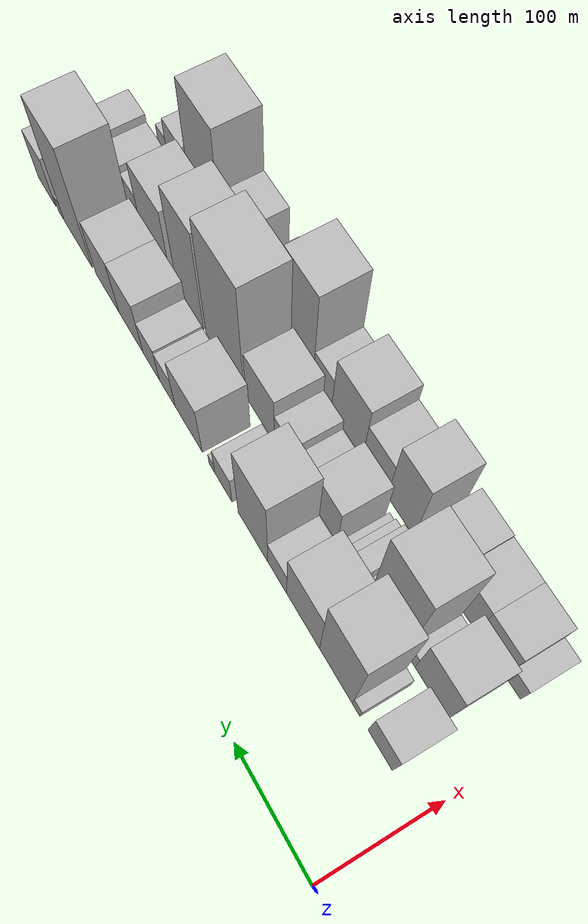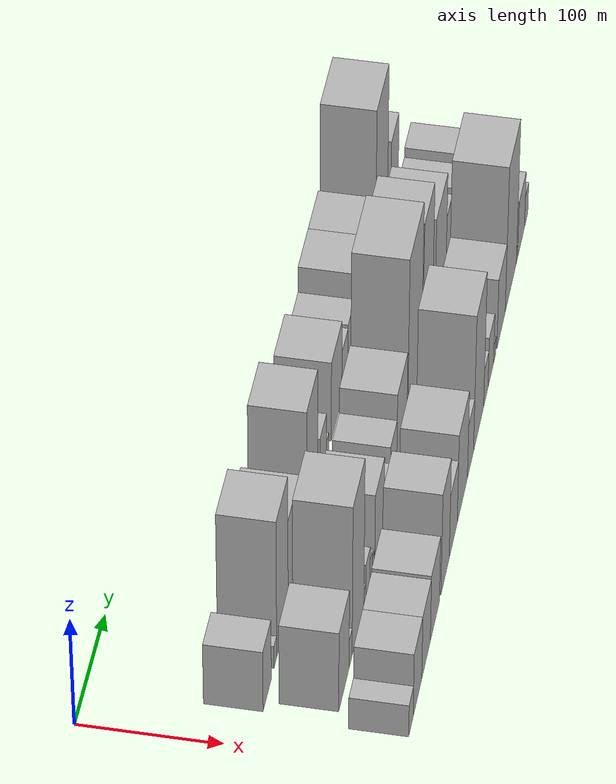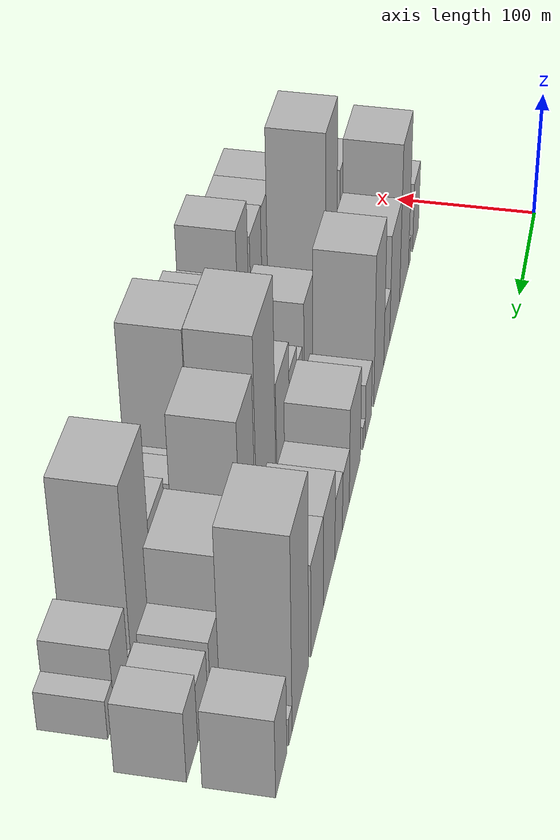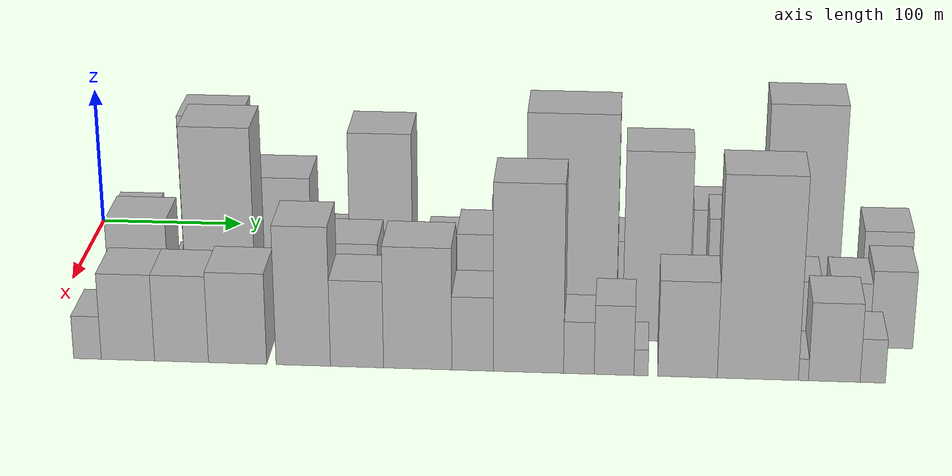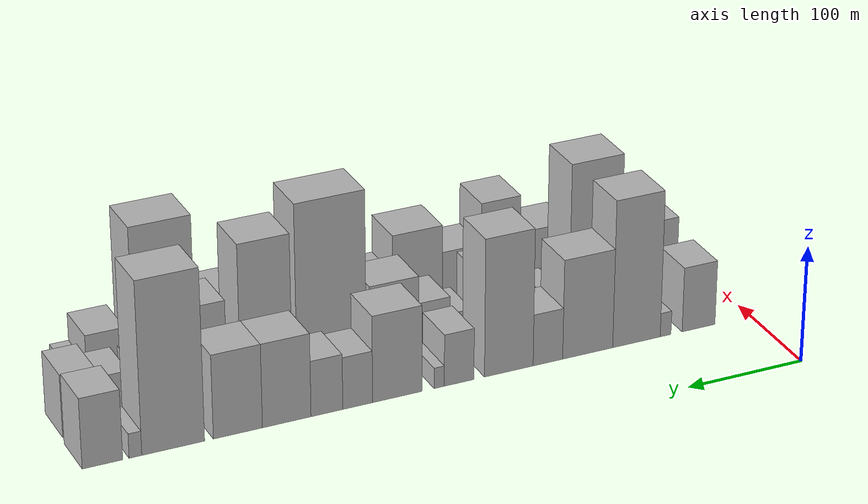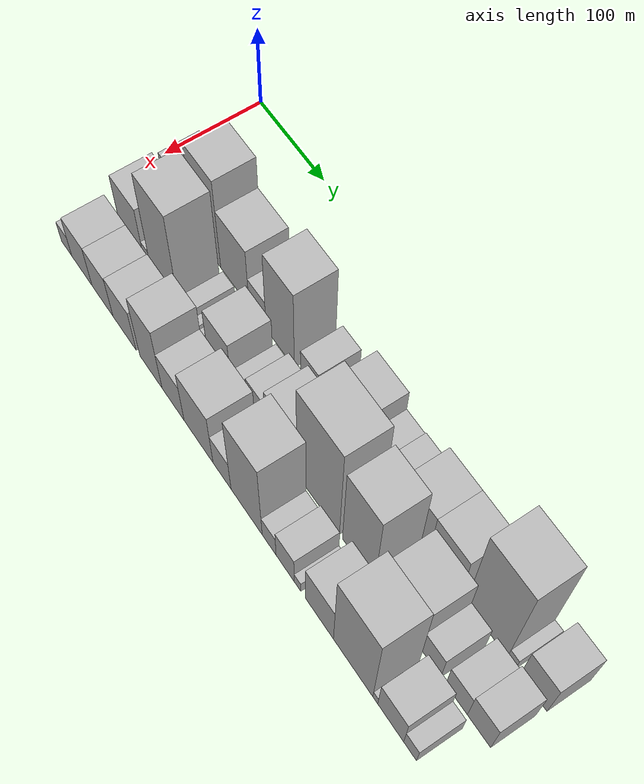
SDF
<sdf version="1.6">
 <world name="default">
  <model name="building_18">
   <static>1</static>
   <pose>100.0000 47.5142 0 0.000000 0.000000 0.000000</pose>
   <link name="link">
    <pose>0 0 28.50 0 0 0</pose>
    <collision name="collision"><geometry><box><size>40.0000 29.5781 57.0000</size></box></geometry></collision>
    <visual name="visual">
     <cast_shadows>0</cast_shadows>
     <geometry><box><size>40.0000 29.5781 57.0000</size></box></geometry>
     <material>
      <script>
       <uri>model://HANNAS_wall/materials/scripts</uri>
       <uri>model://HANNAS_wall/materials/textures</uri>
       <name>vrc/HANNAS_wall</name>
      </script>
     </material>
    </visual>
   </link>
  </model>
  <model name="building_19">
   <static>1</static>
   <pose>100.0000 77.1149 0 0.000000 0.000000 0.000000</pose>
   <link name="link">
    <pose>0 0 10.50 0 0 0</pose>
    <collision name="collision"><geometry><box><size>40.0000 9.6232 21.0000</size></box></geometry></collision>
    <visual name="visual">
     <cast_shadows>0</cast_shadows>
     <geometry><box><size>40.0000 9.6232 21.0000</size></box></geometry>
     <material>
      <script>
       <uri>model://HANNAS_wall/materials/scripts</uri>
       <uri>model://HANNAS_wall/materials/textures</uri>
       <name>vrc/HANNAS_wall</name>
      </script>
     </material>
    </visual>
   </link>
  </model>
  <model name="building_20">
   <static>1</static>
   <pose>100.0000 103.0087 0 0.000000 0.000000 0.000000</pose>
   <link name="link">
    <pose>0 0 64.50 0 0 0</pose>
    <collision name="collision"><geometry><box><size>40.0000 42.1644 129.0000</size></box></geometry></collision>
    <visual name="visual">
     <cast_shadows>0</cast_shadows>
     <geometry><box><size>40.0000 42.1644 129.0000</size></box></geometry>
     <material>
      <script>
       <uri>model://HANNAS_wall/materials/scripts</uri>
       <uri>model://HANNAS_wall/materials/textures</uri>
       <name>vrc/HANNAS_wall</name>
      </script>
     </material>
    </visual>
   </link>
  </model>
  <model name="building_21">
   <static>1</static>
   <pose>100.0000 146.0531 0 0.000000 0.000000 0.000000</pose>
   <link name="link">
    <pose>0 0 43.50 0 0 0</pose>
    <collision name="collision"><geometry><box><size>40.0000 43.9245 87.0000</size></box></geometry></collision>
    <visual name="visual">
     <cast_shadows>0</cast_shadows>
     <geometry><box><size>40.0000 43.9245 87.0000</size></box></geometry>
     <material>
      <script>
       <uri>model://HANNAS_wall/materials/scripts</uri>
       <uri>model://HANNAS_wall/materials/textures</uri>
       <name>vrc/HANNAS_wall</name>
      </script>
     </material>
    </visual>
   </link>
  </model>
  <model name="building_22">
   <static>1</static>
   <pose>100.0000 180.8599 0 0.000000 0.000000 0.000000</pose>
   <link name="link">
    <pose>0 0 22.50 0 0 0</pose>
    <collision name="collision"><geometry><box><size>40.0000 25.6891 45.0000</size></box></geometry></collision>
    <visual name="visual">
     <cast_shadows>0</cast_shadows>
     <geometry><box><size>40.0000 25.6891 45.0000</size></box></geometry>
     <material>
      <script>
       <uri>model://HANNAS_wall/materials/scripts</uri>
       <uri>model://HANNAS_wall/materials/textures</uri>
       <name>vrc/HANNAS_wall</name>
      </script>
     </material>
    </visual>
   </link>
  </model>
  <model name="building_23">
   <static>1</static>
   <pose>100.0000 214.6392 0 0.000000 0.000000 0.000000</pose>
   <link name="link">
    <pose>0 0 60.00 0 0 0</pose>
    <collision name="collision"><geometry><box><size>40.0000 41.8695 120.0000</size></box></geometry></collision>
    <visual name="visual">
     <cast_shadows>0</cast_shadows>
     <geometry><box><size>40.0000 41.8695 120.0000</size></box></geometry>
     <material>
      <script>
       <uri>model://HANNAS_wall/materials/scripts</uri>
       <uri>model://HANNAS_wall/materials/textures</uri>
       <name>vrc/HANNAS_wall</name>
      </script>
     </material>
    </visual>
   </link>
  </model>
  <model name="building_24">
   <static>1</static>
   <pose>100.0000 257.1853 0 0.000000 0.000000 0.000000</pose>
   <link name="link">
    <pose>0 0 22.50 0 0 0</pose>
    <collision name="collision"><geometry><box><size>40.0000 25.2226 45.0000</size></box></geometry></collision>
    <visual name="visual">
     <cast_shadows>0</cast_shadows>
     <geometry><box><size>40.0000 25.2226 45.0000</size></box></geometry>
     <material>
      <script>
       <uri>model://HANNAS_wall/materials/scripts</uri>
       <uri>model://HANNAS_wall/materials/textures</uri>
       <name>vrc/HANNAS_wall</name>
      </script>
     </material>
    </visual>
   </link>
  </model>
  <model name="building_25">
   <static>1</static>
   <pose>100.0000 274.1610 0 0.000000 0.000000 0.000000</pose>
   <link name="link">
    <pose>0 0 9.00 0 0 0</pose>
    <collision name="collision"><geometry><box><size>40.0000 8.7289 18.0000</size></box></geometry></collision>
    <visual name="visual">
     <cast_shadows>0</cast_shadows>
     <geometry><box><size>40.0000 8.7289 18.0000</size></box></geometry>
     <material>
      <script>
       <uri>model://HANNAS_wall/materials/scripts</uri>
       <uri>model://HANNAS_wall/materials/textures</uri>
       <name>vrc/HANNAS_wall</name>
      </script>
     </material>
    </visual>
   </link>
  </model>
  <model name="building_26">
   <static>1</static>
   <pose>100.0000 309.3299 0 0.000000 0.000000 0.000000</pose>
   <link name="link">
    <pose>0 0 37.50 0 0 0</pose>
    <collision name="collision"><geometry><box><size>40.0000 41.6088 75.0000</size></box></geometry></collision>
    <visual name="visual">
     <cast_shadows>0</cast_shadows>
     <geometry><box><size>40.0000 41.6088 75.0000</size></box></geometry>
     <material>
      <script>
       <uri>model://HANNAS_wall/materials/scripts</uri>
       <uri>model://HANNAS_wall/materials/textures</uri>
       <name>vrc/HANNAS_wall</name>
      </script>
     </material>
    </visual>
   </link>
  </model>
  <model name="building_27">
   <static>1</static>
   <pose>100.0000 342.5197 0 0.000000 0.000000 0.000000</pose>
   <link name="link">
    <pose>0 0 22.50 0 0 0</pose>
    <collision name="collision"><geometry><box><size>40.0000 24.7709 45.0000</size></box></geometry></collision>
    <visual name="visual">
     <cast_shadows>0</cast_shadows>
     <geometry><box><size>40.0000 24.7709 45.0000</size></box></geometry>
     <material>
      <script>
       <uri>model://HANNAS_wall/materials/scripts</uri>
       <uri>model://HANNAS_wall/materials/textures</uri>
       <name>vrc/HANNAS_wall</name>
      </script>
     </material>
    </visual>
   </link>
  </model>
  <model name="building_28">
   <static>1</static>
   <pose>100.0000 368.0168 0 0.000000 0.000000 0.000000</pose>
   <link name="link">
    <pose>0 0 24.00 0 0 0</pose>
    <collision name="collision"><geometry><box><size>40.0000 26.2232 48.0000</size></box></geometry></collision>
    <visual name="visual">
     <cast_shadows>0</cast_shadows>
     <geometry><box><size>40.0000 26.2232 48.0000</size></box></geometry>
     <material>
      <script>
       <uri>model://HANNAS_wall/materials/scripts</uri>
       <uri>model://HANNAS_wall/materials/textures</uri>
       <name>vrc/HANNAS_wall</name>
      </script>
     </material>
    </visual>
   </link>
  </model>
  <model name="building_29">
   <static>1</static>
   <pose>100.0000 400.9794 0 0.000000 0.000000 0.000000</pose>
   <link name="link">
    <pose>0 0 36.00 0 0 0</pose>
    <collision name="collision"><geometry><box><size>40.0000 39.7020 72.0000</size></box></geometry></collision>
    <visual name="visual">
     <cast_shadows>0</cast_shadows>
     <geometry><box><size>40.0000 39.7020 72.0000</size></box></geometry>
     <material>
      <script>
       <uri>model://HANNAS_wall/materials/scripts</uri>
       <uri>model://HANNAS_wall/materials/textures</uri>
       <name>vrc/HANNAS_wall</name>
      </script>
     </material>
    </visual>
   </link>
  </model>
  <model name="building_30">
   <static>1</static>
   <pose>100.0000 440.6748 0 0.000000 0.000000 0.000000</pose>
   <link name="link">
    <pose>0 0 36.00 0 0 0</pose>
    <collision name="collision"><geometry><box><size>40.0000 39.6888 72.0000</size></box></geometry></collision>
    <visual name="visual">
     <cast_shadows>0</cast_shadows>
     <geometry><box><size>40.0000 39.6888 72.0000</size></box></geometry>
     <material>
      <script>
       <uri>model://HANNAS_wall/materials/scripts</uri>
       <uri>model://HANNAS_wall/materials/textures</uri>
       <name>vrc/HANNAS_wall</name>
      </script>
     </material>
    </visual>
   </link>
  </model>
  <model name="building_31">
   <static>1</static>
   <pose>100.0000 492.5339 0 0.000000 0.000000 0.000000</pose>
   <link name="link">
    <pose>0 0 73.50 0 0 0</pose>
    <collision name="collision"><geometry><box><size>40.0000 50.0295 147.0000</size></box></geometry></collision>
    <visual name="visual">
     <cast_shadows>0</cast_shadows>
     <geometry><box><size>40.0000 50.0295 147.0000</size></box></geometry>
     <material>
      <script>
       <uri>model://HANNAS_wall/materials/scripts</uri>
       <uri>model://HANNAS_wall/materials/textures</uri>
       <name>vrc/HANNAS_wall</name>
      </script>
     </material>
    </visual>
   </link>
  </model>
  <model name="building_32">
   <static>1</static>
   <pose>100.0000 522.5782 0 0.000000 0.000000 0.000000</pose>
   <link name="link">
    <pose>0 0 10.50 0 0 0</pose>
    <collision name="collision"><geometry><box><size>40.0000 10.0590 21.0000</size></box></geometry></collision>
    <visual name="visual">
     <cast_shadows>0</cast_shadows>
     <geometry><box><size>40.0000 10.0590 21.0000</size></box></geometry>
     <material>
      <script>
       <uri>model://HANNAS_wall/materials/scripts</uri>
       <uri>model://HANNAS_wall/materials/textures</uri>
       <name>vrc/HANNAS_wall</name>
      </script>
     </material>
    </visual>
   </link>
  </model>
  <model name="building_33">
   <static>1</static>
   <pose>100.0000 548.5103 0 0.000000 0.000000 0.000000</pose>
   <link name="link">
    <pose>0 0 30.00 0 0 0</pose>
    <collision name="collision"><geometry><box><size>40.0000 31.8052 60.0000</size></box></geometry></collision>
    <visual name="visual">
     <cast_shadows>0</cast_shadows>
     <geometry><box><size>40.0000 31.8052 60.0000</size></box></geometry>
     <material>
      <script>
       <uri>model://HANNAS_wall/materials/scripts</uri>
       <uri>model://HANNAS_wall/materials/textures</uri>
       <name>vrc/HANNAS_wall</name>
      </script>
     </material>
    </visual>
   </link>
  </model>
  <model name="building_50">
   <static>1</static>
   <pose>149.0000 61.2179 0 0.000000 0.000000 0.000000</pose>
   <link name="link">
    <pose>0 0 37.50 0 0 0</pose>
    <collision name="collision"><geometry><box><size>40.0000 39.3631 75.0000</size></box></geometry></collision>
    <visual name="visual">
     <cast_shadows>0</cast_shadows>
     <geometry><box><size>40.0000 39.3631 75.0000</size></box></geometry>
     <material>
      <script>
       <uri>model://HANNAS_wall/materials/scripts</uri>
       <uri>model://HANNAS_wall/materials/textures</uri>
       <name>vrc/HANNAS_wall</name>
      </script>
     </material>
    </visual>
   </link>
  </model>
  <model name="building_51">
   <static>1</static>
   <pose>149.0000 86.5905 0 0.000000 0.000000 0.000000</pose>
   <link name="link">
    <pose>0 0 13.50 0 0 0</pose>
    <collision name="collision"><geometry><box><size>40.0000 11.3823 27.0000</size></box></geometry></collision>
    <visual name="visual">
     <cast_shadows>0</cast_shadows>
     <geometry><box><size>40.0000 11.3823 27.0000</size></box></geometry>
     <material>
      <script>
       <uri>model://HANNAS_wall/materials/scripts</uri>
       <uri>model://HANNAS_wall/materials/textures</uri>
       <name>vrc/HANNAS_wall</name>
      </script>
     </material>
    </visual>
   </link>
  </model>
  <model name="building_52">
   <static>1</static>
   <pose>149.0000 115.1074 0 0.000000 0.000000 0.000000</pose>
   <link name="link">
    <pose>0 0 70.50 0 0 0</pose>
    <collision name="collision"><geometry><box><size>40.0000 45.6515 141.0000</size></box></geometry></collision>
    <visual name="visual">
     <cast_shadows>0</cast_shadows>
     <geometry><box><size>40.0000 45.6515 141.0000</size></box></geometry>
     <material>
      <script>
       <uri>model://HANNAS_wall/materials/scripts</uri>
       <uri>model://HANNAS_wall/materials/textures</uri>
       <name>vrc/HANNAS_wall</name>
      </script>
     </material>
    </visual>
   </link>
  </model>
  <model name="building_53">
   <static>1</static>
   <pose>149.0000 141.5567 0 0.000000 0.000000 0.000000</pose>
   <link name="link">
    <pose>0 0 7.50 0 0 0</pose>
    <collision name="collision"><geometry><box><size>40.0000 7.2470 15.0000</size></box></geometry></collision>
    <visual name="visual">
     <cast_shadows>0</cast_shadows>
     <geometry><box><size>40.0000 7.2470 15.0000</size></box></geometry>
     <material>
      <script>
       <uri>model://HANNAS_wall/materials/scripts</uri>
       <uri>model://HANNAS_wall/materials/textures</uri>
       <name>vrc/HANNAS_wall</name>
      </script>
     </material>
    </visual>
   </link>
  </model>
  <model name="building_54">
   <static>1</static>
   <pose>149.0000 153.6375 0 0.000000 0.000000 0.000000</pose>
   <link name="link">
    <pose>0 0 16.50 0 0 0</pose>
    <collision name="collision"><geometry><box><size>40.0000 16.9147 33.0000</size></box></geometry></collision>
    <visual name="visual">
     <cast_shadows>0</cast_shadows>
     <geometry><box><size>40.0000 16.9147 33.0000</size></box></geometry>
     <material>
      <script>
       <uri>model://HANNAS_wall/materials/scripts</uri>
       <uri>model://HANNAS_wall/materials/textures</uri>
       <name>vrc/HANNAS_wall</name>
      </script>
     </material>
    </visual>
   </link>
  </model>
  <model name="building_55">
   <static>1</static>
   <pose>149.0000 166.5069 0 0.000000 0.000000 0.000000</pose>
   <link name="link">
    <pose>0 0 10.50 0 0 0</pose>
    <collision name="collision"><geometry><box><size>40.0000 8.8241 21.0000</size></box></geometry></collision>
    <visual name="visual">
     <cast_shadows>0</cast_shadows>
     <geometry><box><size>40.0000 8.8241 21.0000</size></box></geometry>
     <material>
      <script>
       <uri>model://HANNAS_wall/materials/scripts</uri>
       <uri>model://HANNAS_wall/materials/textures</uri>
       <name>vrc/HANNAS_wall</name>
      </script>
     </material>
    </visual>
   </link>
  </model>
  <model name="building_56">
   <static>1</static>
   <pose>149.0000 174.4870 0 0.000000 0.000000 0.000000</pose>
   <link name="link">
    <pose>0 0 7.50 0 0 0</pose>
    <collision name="collision"><geometry><box><size>40.0000 7.1360 15.0000</size></box></geometry></collision>
    <visual name="visual">
     <cast_shadows>0</cast_shadows>
     <geometry><box><size>40.0000 7.1360 15.0000</size></box></geometry>
     <material>
      <script>
       <uri>model://HANNAS_wall/materials/scripts</uri>
       <uri>model://HANNAS_wall/materials/textures</uri>
       <name>vrc/HANNAS_wall</name>
      </script>
     </material>
    </visual>
   </link>
  </model>
  <model name="building_57">
   <static>1</static>
   <pose>149.0000 199.3699 0 0.000000 0.000000 0.000000</pose>
   <link name="link">
    <pose>0 0 31.50 0 0 0</pose>
    <collision name="collision"><geometry><box><size>40.0000 36.6299 63.0000</size></box></geometry></collision>
    <visual name="visual">
     <cast_shadows>0</cast_shadows>
     <geometry><box><size>40.0000 36.6299 63.0000</size></box></geometry>
     <material>
      <script>
       <uri>model://HANNAS_wall/materials/scripts</uri>
       <uri>model://HANNAS_wall/materials/textures</uri>
       <name>vrc/HANNAS_wall</name>
      </script>
     </material>
    </visual>
   </link>
  </model>
  <model name="building_58">
   <static>1</static>
   <pose>149.0000 232.9311 0 0.000000 0.000000 0.000000</pose>
   <link name="link">
    <pose>0 0 16.50 0 0 0</pose>
    <collision name="collision"><geometry><box><size>40.0000 18.4924 33.0000</size></box></geometry></collision>
    <visual name="visual">
     <cast_shadows>0</cast_shadows>
     <geometry><box><size>40.0000 18.4924 33.0000</size></box></geometry>
     <material>
      <script>
       <uri>model://HANNAS_wall/materials/scripts</uri>
       <uri>model://HANNAS_wall/materials/textures</uri>
       <name>vrc/HANNAS_wall</name>
      </script>
     </material>
    </visual>
   </link>
  </model>
  <model name="building_59">
   <static>1</static>
   <pose>149.0000 255.5444 0 0.000000 0.000000 0.000000</pose>
   <link name="link">
    <pose>0 0 24.00 0 0 0</pose>
    <collision name="collision"><geometry><box><size>40.0000 26.7342 48.0000</size></box></geometry></collision>
    <visual name="visual">
     <cast_shadows>0</cast_shadows>
     <geometry><box><size>40.0000 26.7342 48.0000</size></box></geometry>
     <material>
      <script>
       <uri>model://HANNAS_wall/materials/scripts</uri>
       <uri>model://HANNAS_wall/materials/textures</uri>
       <name>vrc/HANNAS_wall</name>
      </script>
     </material>
    </visual>
   </link>
  </model>
  <model name="building_60">
   <static>1</static>
   <pose>149.0000 289.8240 0 0.000000 0.000000 0.000000</pose>
   <link name="link">
    <pose>0 0 36.00 0 0 0</pose>
    <collision name="collision"><geometry><box><size>40.0000 41.8250 72.0000</size></box></geometry></collision>
    <visual name="visual">
     <cast_shadows>0</cast_shadows>
     <geometry><box><size>40.0000 41.8250 72.0000</size></box></geometry>
     <material>
      <script>
       <uri>model://HANNAS_wall/materials/scripts</uri>
       <uri>model://HANNAS_wall/materials/textures</uri>
       <name>vrc/HANNAS_wall</name>
      </script>
     </material>
    </visual>
   </link>
  </model>
  <model name="building_61">
   <static>1</static>
   <pose>149.0000 342.8504 0 0.000000 0.000000 0.000000</pose>
   <link name="link">
    <pose>0 0 78.00 0 0 0</pose>
    <collision name="collision"><geometry><box><size>40.0000 58.2279 156.0000</size></box></geometry></collision>
    <visual name="visual">
     <cast_shadows>0</cast_shadows>
     <geometry><box><size>40.0000 58.2279 156.0000</size></box></geometry>
     <material>
      <script>
       <uri>model://HANNAS_wall/materials/scripts</uri>
       <uri>model://HANNAS_wall/materials/textures</uri>
       <name>vrc/HANNAS_wall</name>
      </script>
     </material>
    </visual>
   </link>
  </model>
  <model name="building_62">
   <static>1</static>
   <pose>149.0000 397.2505 0 0.000000 0.000000 0.000000</pose>
   <link name="link">
    <pose>0 0 66.00 0 0 0</pose>
    <collision name="collision"><geometry><box><size>40.0000 42.5723 132.0000</size></box></geometry></collision>
    <visual name="visual">
     <cast_shadows>0</cast_shadows>
     <geometry><box><size>40.0000 42.5723 132.0000</size></box></geometry>
     <material>
      <script>
       <uri>model://HANNAS_wall/materials/scripts</uri>
       <uri>model://HANNAS_wall/materials/textures</uri>
       <name>vrc/HANNAS_wall</name>
      </script>
     </material>
    </visual>
   </link>
  </model>
  <model name="building_63">
   <static>1</static>
   <pose>149.0000 422.5136 0 0.000000 0.000000 0.000000</pose>
   <link name="link">
    <pose>0 0 9.00 0 0 0</pose>
    <collision name="collision"><geometry><box><size>40.0000 7.9540 18.0000</size></box></geometry></collision>
    <visual name="visual">
     <cast_shadows>0</cast_shadows>
     <geometry><box><size>40.0000 7.9540 18.0000</size></box></geometry>
     <material>
      <script>
       <uri>model://HANNAS_wall/materials/scripts</uri>
       <uri>model://HANNAS_wall/materials/textures</uri>
       <name>vrc/HANNAS_wall</name>
      </script>
     </material>
    </visual>
   </link>
  </model>
  <model name="building_64">
   <static>1</static>
   <pose>149.0000 453.8273 0 0.000000 0.000000 0.000000</pose>
   <link name="link">
    <pose>0 0 43.50 0 0 0</pose>
    <collision name="collision"><geometry><box><size>40.0000 48.6734 87.0000</size></box></geometry></collision>
    <visual name="visual">
     <cast_shadows>0</cast_shadows>
     <geometry><box><size>40.0000 48.6734 87.0000</size></box></geometry>
     <material>
      <script>
       <uri>model://HANNAS_wall/materials/scripts</uri>
       <uri>model://HANNAS_wall/materials/textures</uri>
       <name>vrc/HANNAS_wall</name>
      </script>
     </material>
    </visual>
   </link>
  </model>
  <model name="building_65">
   <static>1</static>
   <pose>149.0000 490.2933 0 0.000000 0.000000 0.000000</pose>
   <link name="link">
    <pose>0 0 22.50 0 0 0</pose>
    <collision name="collision"><geometry><box><size>40.0000 24.2587 45.0000</size></box></geometry></collision>
    <visual name="visual">
     <cast_shadows>0</cast_shadows>
     <geometry><box><size>40.0000 24.2587 45.0000</size></box></geometry>
     <material>
      <script>
       <uri>model://HANNAS_wall/materials/scripts</uri>
       <uri>model://HANNAS_wall/materials/textures</uri>
       <name>vrc/HANNAS_wall</name>
      </script>
     </material>
    </visual>
   </link>
  </model>
  <model name="building_66">
   <static>1</static>
   <pose>149.0000 521.5453 0 0.000000 0.000000 0.000000</pose>
   <link name="link">
    <pose>0 0 22.50 0 0 0</pose>
    <collision name="collision"><geometry><box><size>40.0000 26.2451 45.0000</size></box></geometry></collision>
    <visual name="visual">
     <cast_shadows>0</cast_shadows>
     <geometry><box><size>40.0000 26.2451 45.0000</size></box></geometry>
     <material>
      <script>
       <uri>model://HANNAS_wall/materials/scripts</uri>
       <uri>model://HANNAS_wall/materials/textures</uri>
       <name>vrc/HANNAS_wall</name>
      </script>
     </material>
    </visual>
   </link>
  </model>
  <model name="building_67">
   <static>1</static>
   <pose>149.0000 548.5156 0 0.000000 0.000000 0.000000</pose>
   <link name="link">
    <pose>0 0 27.00 0 0 0</pose>
    <collision name="collision"><geometry><box><size>40.0000 27.6955 54.0000</size></box></geometry></collision>
    <visual name="visual">
     <cast_shadows>0</cast_shadows>
     <geometry><box><size>40.0000 27.6955 54.0000</size></box></geometry>
     <material>
      <script>
       <uri>model://HANNAS_wall/materials/scripts</uri>
       <uri>model://HANNAS_wall/materials/textures</uri>
       <name>vrc/HANNAS_wall</name>
      </script>
     </material>
    </visual>
   </link>
  </model>
  <model name="building_85">
   <static>1</static>
   <pose>198.0000 36.6774 0 0.000000 0.000000 0.000000</pose>
   <link name="link">
    <pose>0 0 15.00 0 0 0</pose>
    <collision name="collision"><geometry><box><size>40.0000 17.8158 30.0000</size></box></geometry></collision>
    <visual name="visual">
     <cast_shadows>0</cast_shadows>
     <geometry><box><size>40.0000 17.8158 30.0000</size></box></geometry>
     <material>
      <script>
       <uri>model://HANNAS_wall/materials/scripts</uri>
       <uri>model://HANNAS_wall/materials/textures</uri>
       <name>vrc/HANNAS_wall</name>
      </script>
     </material>
    </visual>
   </link>
  </model>
  <model name="building_86">
   <static>1</static>
   <pose>198.0000 62.6893 0 0.000000 0.000000 0.000000</pose>
   <link name="link">
    <pose>0 0 30.00 0 0 0</pose>
    <collision name="collision"><geometry><box><size>40.0000 34.2081 60.0000</size></box></geometry></collision>
    <visual name="visual">
     <cast_shadows>0</cast_shadows>
     <geometry><box><size>40.0000 34.2081 60.0000</size></box></geometry>
     <material>
      <script>
       <uri>model://HANNAS_wall/materials/scripts</uri>
       <uri>model://HANNAS_wall/materials/textures</uri>
       <name>vrc/HANNAS_wall</name>
      </script>
     </material>
    </visual>
   </link>
  </model>
  <model name="building_87">
   <static>1</static>
   <pose>198.0000 97.0841 0 0.000000 0.000000 0.000000</pose>
   <link name="link">
    <pose>0 0 30.00 0 0 0</pose>
    <collision name="collision"><geometry><box><size>40.0000 34.5815 60.0000</size></box></geometry></collision>
    <visual name="visual">
     <cast_shadows>0</cast_shadows>
     <geometry><box><size>40.0000 34.5815 60.0000</size></box></geometry>
     <material>
      <script>
       <uri>model://HANNAS_wall/materials/scripts</uri>
       <uri>model://HANNAS_wall/materials/textures</uri>
       <name>vrc/HANNAS_wall</name>
      </script>
     </material>
    </visual>
   </link>
  </model>
  <model name="building_88">
   <static>1</static>
   <pose>198.0000 133.0027 0 0.000000 0.000000 0.000000</pose>
   <link name="link">
    <pose>0 0 31.50 0 0 0</pose>
    <collision name="collision"><geometry><box><size>40.0000 37.2557 63.0000</size></box></geometry></collision>
    <visual name="visual">
     <cast_shadows>0</cast_shadows>
     <geometry><box><size>40.0000 37.2557 63.0000</size></box></geometry>
     <material>
      <script>
       <uri>model://HANNAS_wall/materials/scripts</uri>
       <uri>model://HANNAS_wall/materials/textures</uri>
       <name>vrc/HANNAS_wall</name>
      </script>
     </material>
    </visual>
   </link>
  </model>
  <model name="building_89">
   <static>1</static>
   <pose>198.0000 174.9799 0 0.000000 0.000000 0.000000</pose>
   <link name="link">
    <pose>0 0 48.00 0 0 0</pose>
    <collision name="collision"><geometry><box><size>40.0000 34.6989 96.0000</size></box></geometry></collision>
    <visual name="visual">
     <cast_shadows>0</cast_shadows>
     <geometry><box><size>40.0000 34.6989 96.0000</size></box></geometry>
     <material>
      <script>
       <uri>model://HANNAS_wall/materials/scripts</uri>
       <uri>model://HANNAS_wall/materials/textures</uri>
       <name>vrc/HANNAS_wall</name>
      </script>
     </material>
    </visual>
   </link>
  </model>
  <model name="building_90">
   <static>1</static>
   <pose>198.0000 209.2083 0 0.000000 0.000000 0.000000</pose>
   <link name="link">
    <pose>0 0 30.00 0 0 0</pose>
    <collision name="collision"><geometry><box><size>40.0000 33.7578 60.0000</size></box></geometry></collision>
    <visual name="visual">
     <cast_shadows>0</cast_shadows>
     <geometry><box><size>40.0000 33.7578 60.0000</size></box></geometry>
     <material>
      <script>
       <uri>model://HANNAS_wall/materials/scripts</uri>
       <uri>model://HANNAS_wall/materials/textures</uri>
       <name>vrc/HANNAS_wall</name>
      </script>
     </material>
    </visual>
   </link>
  </model>
  <model name="building_91">
   <static>1</static>
   <pose>198.0000 247.6906 0 0.000000 0.000000 0.000000</pose>
   <link name="link">
    <pose>0 0 42.00 0 0 0</pose>
    <collision name="collision"><geometry><box><size>40.0000 43.2067 84.0000</size></box></geometry></collision>
    <visual name="visual">
     <cast_shadows>0</cast_shadows>
     <geometry><box><size>40.0000 43.2067 84.0000</size></box></geometry>
     <material>
      <script>
       <uri>model://HANNAS_wall/materials/scripts</uri>
       <uri>model://HANNAS_wall/materials/textures</uri>
       <name>vrc/HANNAS_wall</name>
      </script>
     </material>
    </visual>
   </link>
  </model>
  <model name="building_92">
   <static>1</static>
   <pose>198.0000 282.4220 0 0.000000 0.000000 0.000000</pose>
   <link name="link">
    <pose>0 0 25.50 0 0 0</pose>
    <collision name="collision"><geometry><box><size>40.0000 26.2561 51.0000</size></box></geometry></collision>
    <visual name="visual">
     <cast_shadows>0</cast_shadows>
     <geometry><box><size>40.0000 26.2561 51.0000</size></box></geometry>
     <material>
      <script>
       <uri>model://HANNAS_wall/materials/scripts</uri>
       <uri>model://HANNAS_wall/materials/textures</uri>
       <name>vrc/HANNAS_wall</name>
      </script>
     </material>
    </visual>
   </link>
  </model>
  <model name="building_93">
   <static>1</static>
   <pose>198.0000 317.6720 0 0.000000 0.000000 0.000000</pose>
   <link name="link">
    <pose>0 0 64.50 0 0 0</pose>
    <collision name="collision"><geometry><box><size>40.0000 44.2439 129.0000</size></box></geometry></collision>
    <visual name="visual">
     <cast_shadows>0</cast_shadows>
     <geometry><box><size>40.0000 44.2439 129.0000</size></box></geometry>
     <material>
      <script>
       <uri>model://HANNAS_wall/materials/scripts</uri>
       <uri>model://HANNAS_wall/materials/textures</uri>
       <name>vrc/HANNAS_wall</name>
      </script>
     </material>
    </visual>
   </link>
  </model>
  <model name="building_94">
   <static>1</static>
   <pose>198.0000 349.4217 0 0.000000 0.000000 0.000000</pose>
   <link name="link">
    <pose>0 0 18.00 0 0 0</pose>
    <collision name="collision"><geometry><box><size>40.0000 19.2553 36.0000</size></box></geometry></collision>
    <visual name="visual">
     <cast_shadows>0</cast_shadows>
     <geometry><box><size>40.0000 19.2553 36.0000</size></box></geometry>
     <material>
      <script>
       <uri>model://HANNAS_wall/materials/scripts</uri>
       <uri>model://HANNAS_wall/materials/textures</uri>
       <name>vrc/HANNAS_wall</name>
      </script>
     </material>
    </visual>
   </link>
  </model>
  <model name="building_95">
   <static>1</static>
   <pose>198.0000 371.5043 0 0.000000 0.000000 0.000000</pose>
   <link name="link">
    <pose>0 0 24.00 0 0 0</pose>
    <collision name="collision"><geometry><box><size>40.0000 24.9100 48.0000</size></box></geometry></collision>
    <visual name="visual">
     <cast_shadows>0</cast_shadows>
     <geometry><box><size>40.0000 24.9100 48.0000</size></box></geometry>
     <material>
      <script>
       <uri>model://HANNAS_wall/materials/scripts</uri>
       <uri>model://HANNAS_wall/materials/textures</uri>
       <name>vrc/HANNAS_wall</name>
      </script>
     </material>
    </visual>
   </link>
  </model>
  <model name="building_96">
   <static>1</static>
   <pose>198.0000 388.4126 0 0.000000 0.000000 0.000000</pose>
   <link name="link">
    <pose>0 0 9.00 0 0 0</pose>
    <collision name="collision"><geometry><box><size>40.0000 8.9066 18.0000</size></box></geometry></collision>
    <visual name="visual">
     <cast_shadows>0</cast_shadows>
     <geometry><box><size>40.0000 8.9066 18.0000</size></box></geometry>
     <material>
      <script>
       <uri>model://HANNAS_wall/materials/scripts</uri>
       <uri>model://HANNAS_wall/materials/textures</uri>
       <name>vrc/HANNAS_wall</name>
      </script>
     </material>
    </visual>
   </link>
  </model>
  <model name="building_97">
   <static>1</static>
   <pose>198.0000 417.4817 0 0.000000 0.000000 0.000000</pose>
   <link name="link">
    <pose>0 0 33.00 0 0 0</pose>
    <collision name="collision"><geometry><box><size>40.0000 37.2315 66.0000</size></box></geometry></collision>
    <visual name="visual">
     <cast_shadows>0</cast_shadows>
     <geometry><box><size>40.0000 37.2315 66.0000</size></box></geometry>
     <material>
      <script>
       <uri>model://HANNAS_wall/materials/scripts</uri>
       <uri>model://HANNAS_wall/materials/textures</uri>
       <name>vrc/HANNAS_wall</name>
      </script>
     </material>
    </visual>
   </link>
  </model>
  <model name="building_98">
   <static>1</static>
   <pose>198.0000 461.3898 0 0.000000 0.000000 0.000000</pose>
   <link name="link">
    <pose>0 0 69.00 0 0 0</pose>
    <collision name="collision"><geometry><box><size>40.0000 50.5847 138.0000</size></box></geometry></collision>
    <visual name="visual">
     <cast_shadows>0</cast_shadows>
     <geometry><box><size>40.0000 50.5847 138.0000</size></box></geometry>
     <material>
      <script>
       <uri>model://HANNAS_wall/materials/scripts</uri>
       <uri>model://HANNAS_wall/materials/textures</uri>
       <name>vrc/HANNAS_wall</name>
      </script>
     </material>
    </visual>
   </link>
  </model>
  <model name="building_99">
   <static>1</static>
   <pose>198.0000 489.7588 0 0.000000 0.000000 0.000000</pose>
   <link name="link">
    <pose>0 0 7.50 0 0 0</pose>
    <collision name="collision"><geometry><box><size>40.0000 6.1533 15.0000</size></box></geometry></collision>
    <visual name="visual">
     <cast_shadows>0</cast_shadows>
     <geometry><box><size>40.0000 6.1533 15.0000</size></box></geometry>
     <material>
      <script>
       <uri>model://HANNAS_wall/materials/scripts</uri>
       <uri>model://HANNAS_wall/materials/textures</uri>
       <name>vrc/HANNAS_wall</name>
      </script>
     </material>
    </visual>
   </link>
  </model>
  <model name="building_100">
   <static>1</static>
   <pose>198.0000 508.8793 0 0.000000 0.000000 0.000000</pose>
   <link name="link">
    <pose>0 0 27.00 0 0 0</pose>
    <collision name="collision"><geometry><box><size>40.0000 32.0877 54.0000</size></box></geometry></collision>
    <visual name="visual">
     <cast_shadows>0</cast_shadows>
     <geometry><box><size>40.0000 32.0877 54.0000</size></box></geometry>
     <material>
      <script>
       <uri>model://HANNAS_wall/materials/scripts</uri>
       <uri>model://HANNAS_wall/materials/textures</uri>
       <name>vrc/HANNAS_wall</name>
      </script>
     </material>
    </visual>
   </link>
  </model>
  <model name="building_101">
   <static>1</static>
   <pose>198.0000 532.7438 0 0.000000 0.000000 0.000000</pose>
   <link name="link">
    <pose>0 0 15.00 0 0 0</pose>
    <collision name="collision"><geometry><box><size>40.0000 15.6412 30.0000</size></box></geometry></collision>
    <visual name="visual">
     <cast_shadows>0</cast_shadows>
     <geometry><box><size>40.0000 15.6412 30.0000</size></box></geometry>
     <material>
      <script>
       <uri>model://HANNAS_wall/materials/scripts</uri>
       <uri>model://HANNAS_wall/materials/textures</uri>
       <name>vrc/HANNAS_wall</name>
      </script>
     </material>
    </visual>
   </link>
  </model>
 </world>
</sdf>
